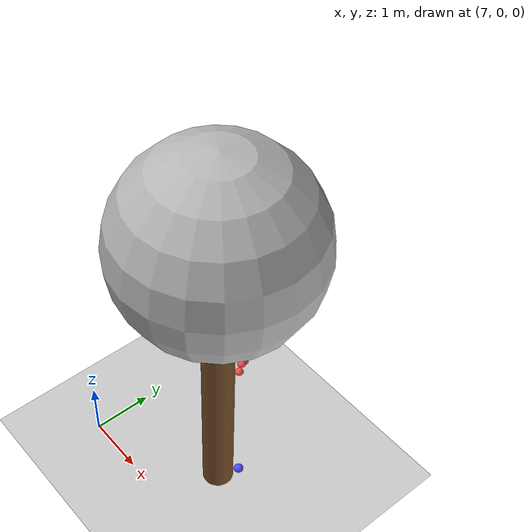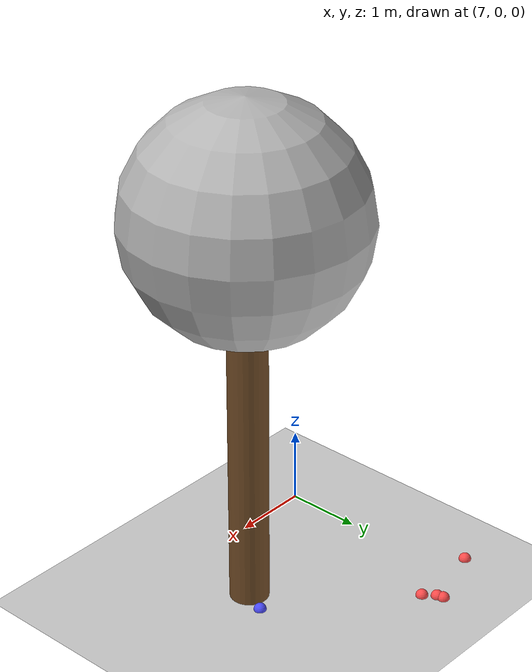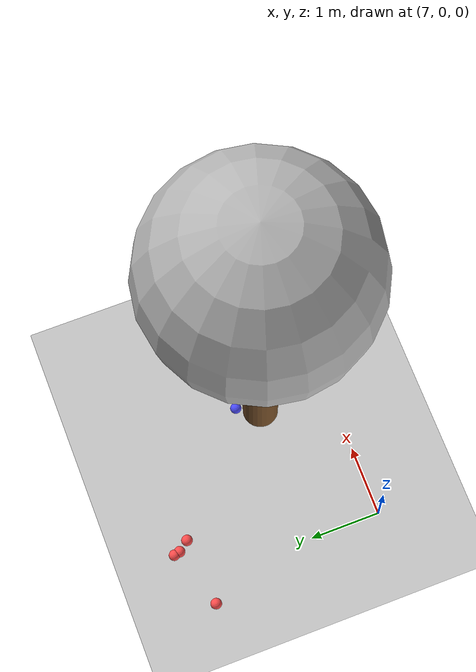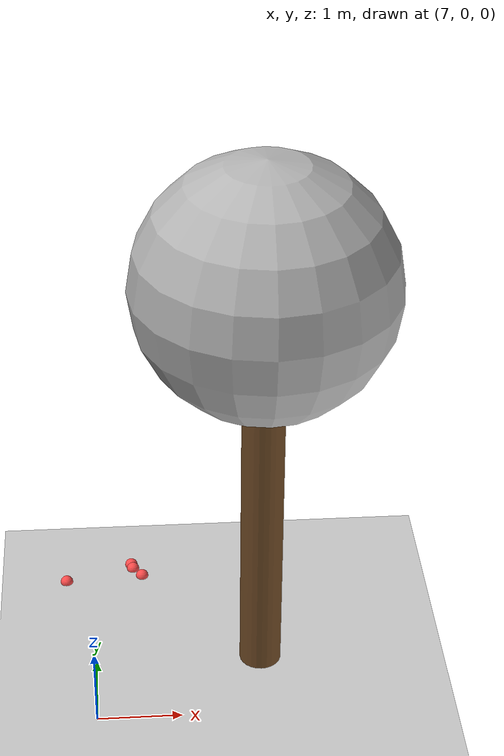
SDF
<sdf version="1.7">
 <world name="default">
  <model name="ground_plane">
   <static>1</static>
   <link name="link">
    <collision name="collision">
     <geometry><plane><normal>0 0 1</normal><size>100 100</size></plane></geometry>
     <surface>
      <contact><collide_bitmask>65535</collide_bitmask></contact>
      <friction><ode><mu>100</mu><mu2>50</mu2></ode></friction>
     </surface>
    </collision>
    <visual name="visual">
     <cast_shadows>0</cast_shadows>
     <geometry><plane><normal>0 0 1</normal><size>100 100</size></plane></geometry>
     <material>
      <script><uri>file://media/materials/scripts/gazebo.material</uri><name>Gazebo/Grey</name></script>
     </material>
    </visual>
   </link>
  </model>
  <model name="tree_simple_96">
   <static>1</static>
   <link name="link">
    <pose>0 0 0.1 0 -0 0</pose>
    <inertial>
     <mass>666</mass>
     <inertia>
      <ixx>0.0861167</ixx>
      <ixy>0</ixy>
      <ixz>0</ixz>
      <iyy>0.0861167</iyy>
      <iyz>0</iyz>
      <izz>0.0861167</izz>
     </inertia>
    </inertial>
    <collision name="collision_trunk">
     <pose>0 0 2 0 -0 0</pose>
     <geometry><cylinder><radius>0.25</radius><length>4</length></cylinder></geometry>
     <surface>
      <contact>
       <poissons_ratio>0.347</poissons_ratio>
       <elastic_modulus>8.8e+09</elastic_modulus>
       <ode><kp>100000</kp><kd>100</kd><max_vel>100</max_vel><min_depth>0.001</min_depth></ode>
      </contact>
      <friction>
       <torsional>
        <coefficient>1</coefficient>
        <use_patch_radius>0</use_patch_radius>
        <surface_radius>0.01</surface_radius>
       </torsional>
      </friction>
     </surface>
    </collision>
    <collision name="collision_treetop">
     <pose>0 0 5.2 0 -0 0</pose>
     <geometry><sphere><radius>1.5</radius></sphere></geometry>
     <surface>
      <contact>
       <poissons_ratio>0.347</poissons_ratio>
       <elastic_modulus>8.8e+09</elastic_modulus>
       <ode><kp>100000</kp><kd>100</kd><max_vel>100</max_vel><min_depth>0.001</min_depth></ode>
      </contact>
      <friction>
       <torsional>
        <coefficient>1</coefficient>
        <use_patch_radius>0</use_patch_radius>
        <surface_radius>0.01</surface_radius>
       </torsional>
      </friction>
     </surface>
    </collision>
    <visual name="trunk">
     <pose>0 0 2 0 -0 0</pose>
     <geometry><cylinder><radius>0.25</radius><length>4</length></cylinder></geometry>
     <material>
      <script>
       <uri>model://tree_simple/scripts</uri>
       <uri>model://tree_simple/materials/textures</uri>
       <name>TreeSimple/Trunk</name>
      </script>
     </material>
    </visual>
    <visual name="treetop">
     <pose>0 0 5.2 0 -0 0</pose>
     <geometry><sphere><radius>1.5</radius></sphere></geometry>
     <material>
      <script>
       <uri>model://tree_simple/scripts</uri>
       <uri>model://tree_simple/materials/textures</uri>
       <name>TreeSimple/Treetop</name>
      </script>
     </material>
    </visual>
   </link>
   <pose>9 1 -0.1 0 -0 0</pose>
  </model>
  <model name="seed_red_362">
   <link name="link">
    <inertial>
     <mass>1</mass>
     <inertia><ixx>0.1</ixx><ixy>0</ixy><ixz>0</ixz><iyy>0.1</iyy><iyz>0</iyz><izz>0.1</izz></inertia>
    </inertial>
    <visual name="visual">
     <geometry><sphere><radius>0.08</radius></sphere></geometry>
     <material>
      <script><name>Gazebo/Grey</name><uri>file://media/materials/scripts/gazebo.material</uri></script>
      <shader type="pixel"><normal_map>__default__</normal_map></shader>
      <ambient>1 0.3 0.3 1</ambient>
      <diffuse>0.7 0.7 0.7 1</diffuse>
      <specular>0.01 0.01 0.01 1</specular>
      <emissive>0 0 0 1</emissive>
     </material>
    </visual>
    <collision name="collision">
     <geometry><sphere><radius>0.0005</radius></sphere></geometry>
     <surface>
      <friction>
       <ode><mu>1</mu><mu2>1</mu2><fdir1>0 0 0</fdir1><slip1>0</slip1><slip2>0</slip2></ode>
       <torsional>
        <coefficient>1</coefficient>
        <patch_radius>0</patch_radius>
        <surface_radius>0</surface_radius>
        <use_patch_radius>1</use_patch_radius>
        <ode><slip>0</slip></ode>
       </torsional>
      </friction>
      <bounce><restitution_coefficient>0</restitution_coefficient><threshold>1e+06</threshold></bounce>
      <contact>
       <collide_without_contact>0</collide_without_contact>
       <collide_without_contact_bitmask>1</collide_without_contact_bitmask>
       <collide_bitmask>1</collide_bitmask>
       <ode>
        <soft_cfm>0</soft_cfm>
        <soft_erp>0.2</soft_erp>
        <kp>1e+13</kp>
        <kd>1</kd>
        <max_vel>0.01</max_vel>
        <min_depth>0</min_depth>
       </ode>
       <bullet>
        <split_impulse>1</split_impulse>
        <split_impulse_penetration_threshold>-0.01</split_impulse_penetration_threshold>
        <soft_cfm>0</soft_cfm>
        <soft_erp>0.2</soft_erp>
        <kp>1e+13</kp>
        <kd>1</kd>
       </bullet>
      </contact>
     </surface>
    </collision>
   </link>
   <static>0</static>
   <pose>6.62202 2.56596 0.0005 0 -0 0</pose>
  </model>
  <model name="seed_red_363">
   <link name="link">
    <inertial>
     <mass>1</mass>
     <inertia><ixx>0.1</ixx><ixy>0</ixy><ixz>0</ixz><iyy>0.1</iyy><iyz>0</iyz><izz>0.1</izz></inertia>
    </inertial>
    <visual name="visual">
     <geometry><sphere><radius>0.08</radius></sphere></geometry>
     <material>
      <script><name>Gazebo/Grey</name><uri>file://media/materials/scripts/gazebo.material</uri></script>
      <shader type="pixel"><normal_map>__default__</normal_map></shader>
      <ambient>1 0.3 0.3 1</ambient>
      <diffuse>0.7 0.7 0.7 1</diffuse>
      <specular>0.01 0.01 0.01 1</specular>
      <emissive>0 0 0 1</emissive>
     </material>
    </visual>
    <collision name="collision">
     <geometry><sphere><radius>0.0005</radius></sphere></geometry>
     <surface>
      <friction>
       <ode><mu>1</mu><mu2>1</mu2><fdir1>0 0 0</fdir1><slip1>0</slip1><slip2>0</slip2></ode>
       <torsional>
        <coefficient>1</coefficient>
        <patch_radius>0</patch_radius>
        <surface_radius>0</surface_radius>
        <use_patch_radius>1</use_patch_radius>
        <ode><slip>0</slip></ode>
       </torsional>
      </friction>
      <bounce><restitution_coefficient>0</restitution_coefficient><threshold>1e+06</threshold></bounce>
      <contact>
       <collide_without_contact>0</collide_without_contact>
       <collide_without_contact_bitmask>1</collide_without_contact_bitmask>
       <collide_bitmask>1</collide_bitmask>
       <ode>
        <soft_cfm>0</soft_cfm>
        <soft_erp>0.2</soft_erp>
        <kp>1e+13</kp>
        <kd>1</kd>
        <max_vel>0.01</max_vel>
        <min_depth>0</min_depth>
       </ode>
       <bullet>
        <split_impulse>1</split_impulse>
        <split_impulse_penetration_threshold>-0.01</split_impulse_penetration_threshold>
        <soft_cfm>0</soft_cfm>
        <soft_erp>0.2</soft_erp>
        <kp>1e+13</kp>
        <kd>1</kd>
       </bullet>
      </contact>
     </surface>
    </collision>
   </link>
   <static>0</static>
   <pose>7.59736 2.63428 0.0005 0 -0 0</pose>
  </model>
  <model name="seed_red_365">
   <link name="link">
    <inertial>
     <mass>1</mass>
     <inertia><ixx>0.1</ixx><ixy>0</ixy><ixz>0</ixz><iyy>0.1</iyy><iyz>0</iyz><izz>0.1</izz></inertia>
    </inertial>
    <visual name="visual">
     <geometry><sphere><radius>0.08</radius></sphere></geometry>
     <material>
      <script><name>Gazebo/Grey</name><uri>file://media/materials/scripts/gazebo.material</uri></script>
      <shader type="pixel"><normal_map>__default__</normal_map></shader>
      <ambient>1 0.3 0.3 1</ambient>
      <diffuse>0.7 0.7 0.7 1</diffuse>
      <specular>0.01 0.01 0.01 1</specular>
      <emissive>0 0 0 1</emissive>
     </material>
    </visual>
    <collision name="collision">
     <geometry><sphere><radius>0.0005</radius></sphere></geometry>
     <surface>
      <friction>
       <ode><mu>1</mu><mu2>1</mu2><fdir1>0 0 0</fdir1><slip1>0</slip1><slip2>0</slip2></ode>
       <torsional>
        <coefficient>1</coefficient>
        <patch_radius>0</patch_radius>
        <surface_radius>0</surface_radius>
        <use_patch_radius>1</use_patch_radius>
        <ode><slip>0</slip></ode>
       </torsional>
      </friction>
      <bounce><restitution_coefficient>0</restitution_coefficient><threshold>1e+06</threshold></bounce>
      <contact>
       <collide_without_contact>0</collide_without_contact>
       <collide_without_contact_bitmask>1</collide_without_contact_bitmask>
       <collide_bitmask>1</collide_bitmask>
       <ode>
        <soft_cfm>0</soft_cfm>
        <soft_erp>0.2</soft_erp>
        <kp>1e+13</kp>
        <kd>1</kd>
        <max_vel>0.01</max_vel>
        <min_depth>0</min_depth>
       </ode>
       <bullet>
        <split_impulse>1</split_impulse>
        <split_impulse_penetration_threshold>-0.01</split_impulse_penetration_threshold>
        <soft_cfm>0</soft_cfm>
        <soft_erp>0.2</soft_erp>
        <kp>1e+13</kp>
        <kd>1</kd>
       </bullet>
      </contact>
     </surface>
    </collision>
   </link>
   <static>0</static>
   <pose>7.48296 2.78632 0.0005 0 -0 0</pose>
  </model>
  <model name="seed_red_366">
   <link name="link">
    <inertial>
     <mass>1</mass>
     <inertia><ixx>0.1</ixx><ixy>0</ixy><ixz>0</ixz><iyy>0.1</iyy><iyz>0</iyz><izz>0.1</izz></inertia>
    </inertial>
    <visual name="visual">
     <geometry><sphere><radius>0.08</radius></sphere></geometry>
     <material>
      <script><name>Gazebo/Grey</name><uri>file://media/materials/scripts/gazebo.material</uri></script>
      <shader type="pixel"><normal_map>__default__</normal_map></shader>
      <ambient>1 0.3 0.3 1</ambient>
      <diffuse>0.7 0.7 0.7 1</diffuse>
      <specular>0.01 0.01 0.01 1</specular>
      <emissive>0 0 0 1</emissive>
     </material>
    </visual>
    <collision name="collision">
     <geometry><sphere><radius>0.0005</radius></sphere></geometry>
     <surface>
      <friction>
       <ode><mu>1</mu><mu2>1</mu2><fdir1>0 0 0</fdir1><slip1>0</slip1><slip2>0</slip2></ode>
       <torsional>
        <coefficient>1</coefficient>
        <patch_radius>0</patch_radius>
        <surface_radius>0</surface_radius>
        <use_patch_radius>1</use_patch_radius>
        <ode><slip>0</slip></ode>
       </torsional>
      </friction>
      <bounce><restitution_coefficient>0</restitution_coefficient><threshold>1e+06</threshold></bounce>
      <contact>
       <collide_without_contact>0</collide_without_contact>
       <collide_without_contact_bitmask>1</collide_without_contact_bitmask>
       <collide_bitmask>1</collide_bitmask>
       <ode>
        <soft_cfm>0</soft_cfm>
        <soft_erp>0.2</soft_erp>
        <kp>1e+13</kp>
        <kd>1</kd>
        <max_vel>0.01</max_vel>
        <min_depth>0</min_depth>
       </ode>
       <bullet>
        <split_impulse>1</split_impulse>
        <split_impulse_penetration_threshold>-0.01</split_impulse_penetration_threshold>
        <soft_cfm>0</soft_cfm>
        <soft_erp>0.2</soft_erp>
        <kp>1e+13</kp>
        <kd>1</kd>
       </bullet>
      </contact>
     </surface>
    </collision>
   </link>
   <static>0</static>
   <pose>7.46315 2.86842 0.0005 0 -0 0</pose>
  </model>
  <model name="seed_blue_214">
   <link name="link">
    <inertial>
     <mass>1</mass>
     <inertia><ixx>0.1</ixx><ixy>0</ixy><ixz>0</ixz><iyy>0.1</iyy><iyz>0</iyz><izz>0.1</izz></inertia>
    </inertial>
    <visual name="visual">
     <geometry><sphere><radius>0.08</radius></sphere></geometry>
     <material>
      <script><name>Gazebo/Grey</name><uri>file://media/materials/scripts/gazebo.material</uri></script>
      <shader type="pixel"><normal_map>__default__</normal_map></shader>
      <ambient>0.3 0.3 1 1</ambient>
      <diffuse>0.7 0.7 0.7 1</diffuse>
      <specular>0.01 0.01 0.01 1</specular>
      <emissive>0 0 0 1</emissive>
     </material>
    </visual>
    <collision name="collision">
     <geometry><sphere><radius>0.0005</radius></sphere></geometry>
     <surface>
      <friction>
       <ode><mu>1</mu><mu2>1</mu2><fdir1>0 0 0</fdir1><slip1>0</slip1><slip2>0</slip2></ode>
       <torsional>
        <coefficient>1</coefficient>
        <patch_radius>0</patch_radius>
        <surface_radius>0</surface_radius>
        <use_patch_radius>1</use_patch_radius>
        <ode><slip>0</slip></ode>
       </torsional>
      </friction>
      <bounce><restitution_coefficient>0</restitution_coefficient><threshold>1e+06</threshold></bounce>
      <contact>
       <collide_without_contact>0</collide_without_contact>
       <collide_without_contact_bitmask>1</collide_without_contact_bitmask>
       <collide_bitmask>1</collide_bitmask>
       <ode>
        <soft_cfm>0</soft_cfm>
        <soft_erp>0.2</soft_erp>
        <kp>1e+13</kp>
        <kd>1</kd>
        <max_vel>0.01</max_vel>
        <min_depth>0</min_depth>
       </ode>
       <bullet>
        <split_impulse>1</split_impulse>
        <split_impulse_penetration_threshold>-0.01</split_impulse_penetration_threshold>
        <soft_cfm>0</soft_cfm>
        <soft_erp>0.2</soft_erp>
        <kp>1e+13</kp>
        <kd>1</kd>
       </bullet>
      </contact>
     </surface>
    </collision>
   </link>
   <static>0</static>
   <pose>9.15225 1.31648 0.0005 0 -0 0</pose>
  </model>
 </world>
</sdf>
